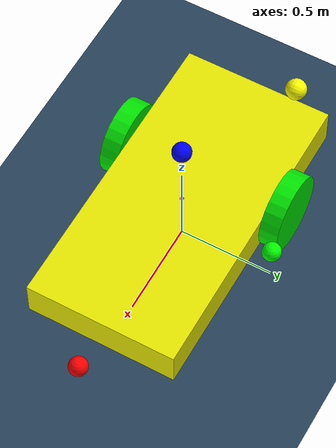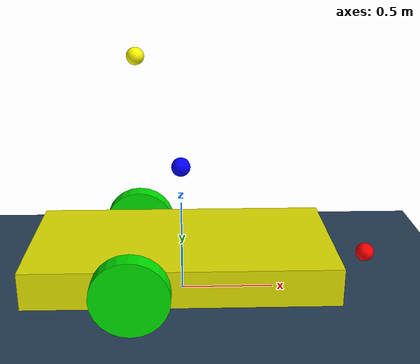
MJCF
<mujoco model="go2 scene">
  <include file="2wheel_robot.xml"/>

  <statistic center="0 0 0.1" extent="0.8"/>

  <visual>
    <headlight diffuse="0.6 0.6 0.6" ambient="0.3 0.3 0.3" specular="0 0 0"/>
    <rgba haze="0.15 0.25 0.35 1"/>
    <global azimuth="-130" elevation="-20"/>
  </visual>

  <asset>
    <texture type="skybox" builtin="gradient" rgb1="0.3 0.5 0.7" rgb2="0 0 0" width="512" height="3072"/>
    <texture type="2d" name="groundplane" builtin="checker" mark="edge" rgb1="0.2 0.3 0.4" rgb2="0.1 0.2 0.3"
      markrgb="0.8 0.8 0.8" width="300" height="300"/>
    <material name="groundplane" texture="groundplane" texuniform="true" texrepeat="5 5" reflectance="0.2"/>
  </asset>

  <worldbody>
    <light pos="0 0 1.5" dir="0 0 -1" directional="true"/>
    <geom name="floor" size="0 0 0.05" type="plane" material="groundplane"/>

  </worldbody>
</mujoco>

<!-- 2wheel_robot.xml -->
<mujoco>
	<option gravity="0 0 -9.81" />
  <visual>
    <headlight diffuse="0.6 0.6 0.6" ambient="0.3 0.3 0.3" specular="0 0 0"/>
    <rgba haze="0.15 0.25 0.35 1"/>
    <global azimuth="-130" elevation="-20"/>
  </visual>
	<worldbody>
        <light diffuse=".5 .5 .5" pos="0 0 3" dir="0 0 -1"/>
		<body name = "chassis" pos="0 0 0.2" >
			<joint type="free"/>
			<site name="imu_site" pos="0 0 0.1" size="0.01" rgba="1 0 0 1"/>
			<geom type="box" size="0.8 0.4 0.1" rgba=".9 .9 0 1"/>
			  <!-- x축 방향 site (빨강) -->
  			<site name="x_axis" pos="1 0 0" size="0.05" rgba="1 0 0 1"/>

  			<!-- y축 방향 site (녹색) -->
  			<site name="y_axis" pos="0 0.5 0" size="0.05" rgba="0 1 0 1"/>

  			<!-- z축 방향 site (파랑) -->
  			<site name="z_axis" pos="0 0 0.5" size="0.05" rgba="0 0 1 1"/>
			<!-- This code is for ball cast. pos[0]: -->
			<geom name="ballcast" type="sphere" size="0.05" pos="0.5 0 -0.15" rgba="0.2 0.2 0.2 1" contype="1" conaffinity="1"/>
			<!-- Below code has euler angle 90. pos-->
			<body name="left-tire" pos="-0.25 0.45 0" euler='90 0 0'>
				  <!-- 왼쪽 바퀴 y축 방향 site (노랑) -->
  				<site name="l_x_axis" pos="0 1 0" size="0.05" rgba="1 1 0 1"/>

				<joint name = "left-wheel" type="hinge" axis="0 0 -1"/>
				<geom type="cylinder" size=".2 0.05" friction="1 0.1 0.1" rgba="0 .9 0 1"/>
			</body>
			<body name="right-tire" pos="-0.25 -0.45 0" euler='90 0 0'>
				<joint name = "right-wheel" type="hinge" axis="0 0 -1"/>
				<geom type="cylinder" size=".2 0.05"  friction="1 0.1 0.1" rgba="0 .9 0 1"/>
			</body>
		</body>
	</worldbody>
	<sensor>
		<!-- IMU sensor enable -->
		<accelerometer name="imu_acc" site="imu_site"/>
  		<gyro name="imu_gyro" site="imu_site"/>
		<framepos objtype="geom" objname="ballcast"/>
	</sensor>

	<actuator>
	<!-- change kv value to apply motor deviation -->
		<velocity name="left-velocity-servo" joint="left-wheel" kv="100"/>
		<velocity name="right-velocity-servo" joint="right-wheel" kv="200"/>
	</actuator>
</mujoco>
